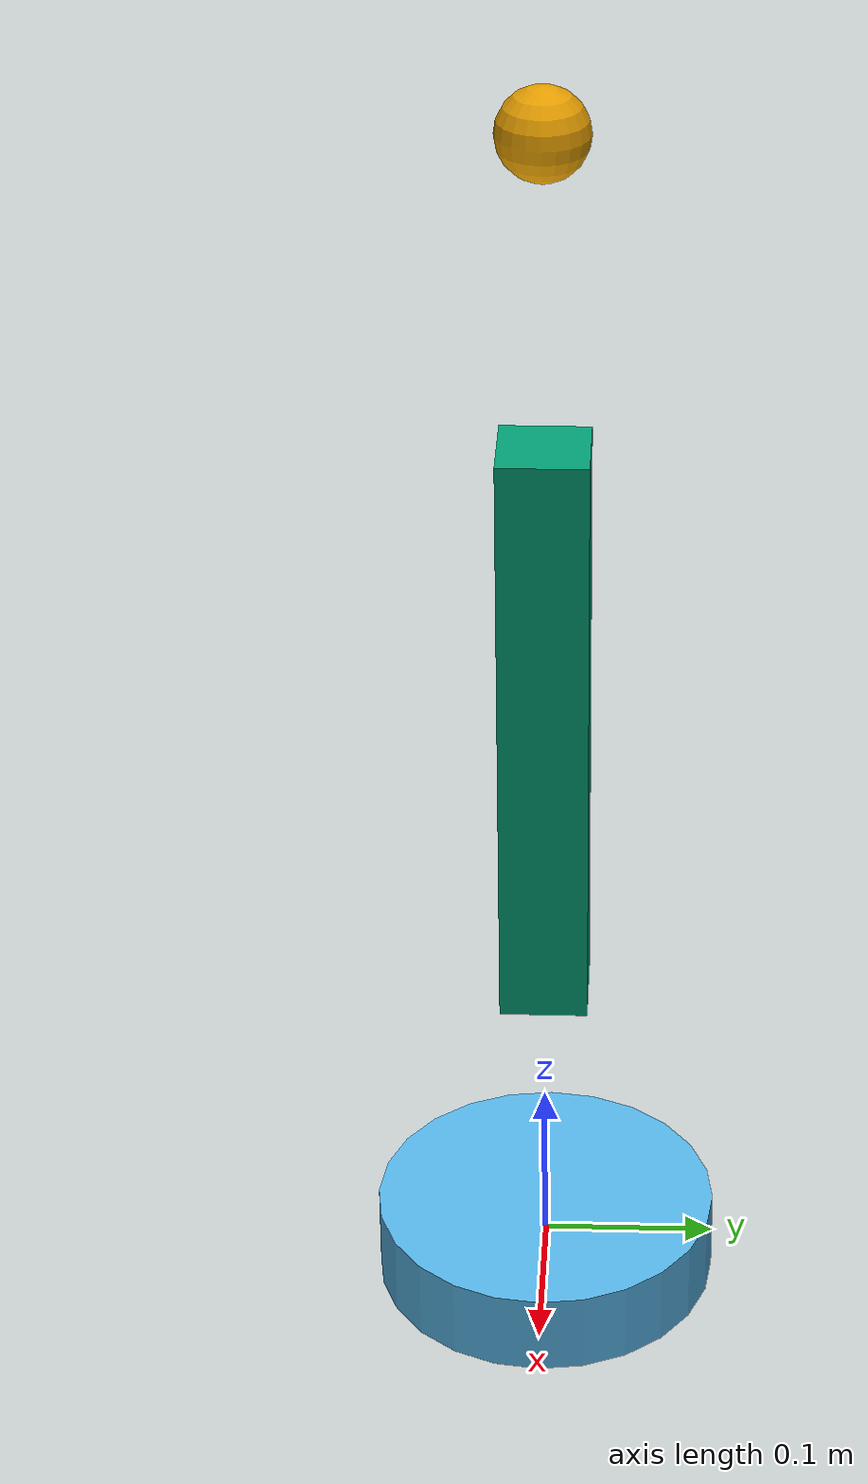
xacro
<?xml version="1.0"?>
<!--
  合成示例：一个两 link + 末端执行器的简化机械臂。
  演示 xacro:include、xacro:property 与 ${name} 参数替换。
  参数：
    arm_length  机械臂长度（米），文件默认 0.35，可由请求参数覆盖
-->
<robot name="example_arm" xmlns:xacro="http://www.ros.org/wiki/xacro">
  <xacro:include filename="sub/gripper.xacro"/>

  <xacro:property name="arm_length" value="0.35"/>

  <link name="base_link">
    <inertial>
      <origin xyz="0 0 0" rpy="0 0 0"/>
      <mass value="2.0"/>
      <inertia ixx="0.02" iyy="0.02" izz="0.01" ixy="0.0" ixz="0.0" iyz="0.0"/>
    </inertial>
    <visual>
      <origin xyz="0 0 0" rpy="0 0 0"/>
      <geometry><cylinder radius="0.1" length="0.05"/></geometry>
    </visual>
    <collision>
      <origin xyz="0 0 0" rpy="0 0 0"/>
      <geometry><cylinder radius="0.1" length="0.05"/></geometry>
    </collision>
  </link>

  <link name="arm_link">
    <inertial>
      <origin xyz="0 0 0" rpy="0 0 0"/>
      <mass value="1.0"/>
      <inertia ixx="0.01" iyy="0.01" izz="0.01" ixy="0.0" ixz="0.0" iyz="0.0"/>
    </inertial>
    <visual>
      <origin xyz="0 0 0" rpy="0 0 0"/>
      <geometry><box size="0.05 0.05 ${arm_length}"/></geometry>
    </visual>
    <collision>
      <origin xyz="0 0 0" rpy="0 0 0"/>
      <geometry><box size="0.05 0.05 ${arm_length}"/></geometry>
    </collision>
  </link>

  <joint name="base_to_arm" type="revolute">
    <parent link="base_link"/>
    <child link="arm_link"/>
    <origin xyz="0 0 ${arm_length}" rpy="0 0 0"/>
    <axis xyz="0 0 1"/>
    <limit lower="-3.14" upper="3.14" effort="10" velocity="1.0"/>
  </joint>

  <joint name="arm_to_gripper" type="fixed">
    <parent link="arm_link"/>
    <child link="gripper_link"/>
    <origin xyz="0 0 ${arm_length}" rpy="0 0 0"/>
  </joint>
</robot>

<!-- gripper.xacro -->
<robot xmlns:xacro="http://www.ros.org/wiki/xacro">
  <!-- 末端执行器：被 arm.xacro include，length 由入口参数 arm_length 间接决定偏移 -->
  <xacro:property name="gripper_mass" value="0.25"/>
  <link name="gripper_link">
    <inertial>
      <origin xyz="0 0 0" rpy="0 0 0"/>
      <mass value="${gripper_mass}"/>
      <inertia ixx="0.002" iyy="0.002" izz="0.002" ixy="0.0" ixz="0.0" iyz="0.0"/>
    </inertial>
    <visual>
      <origin xyz="0 0 0" rpy="0 0 0"/>
      <geometry><sphere radius="0.025"/></geometry>
    </visual>
    <collision>
      <origin xyz="0 0 0" rpy="0 0 0"/>
      <geometry><sphere radius="0.025"/></geometry>
    </collision>
  </link>
</robot>
